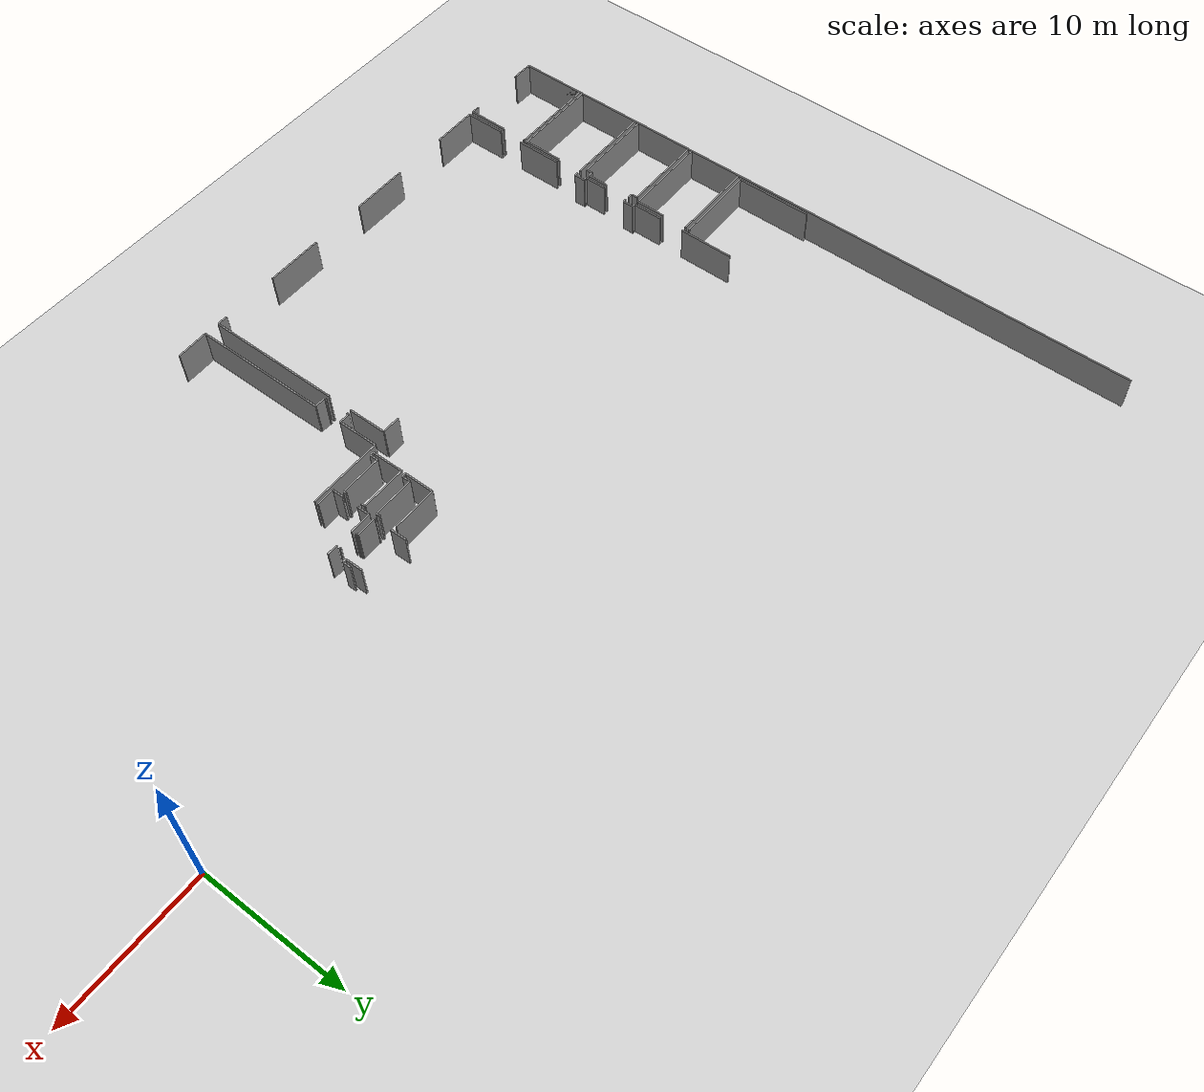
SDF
<sdf version="1.6">
 <world name="default">
  <model name="ground_plane">
   <static>1</static>
   <link name="link">
    <collision name="collision">
     <geometry><plane><normal>0 0 1</normal><size>100 100</size></plane></geometry>
     <surface><friction><ode><mu>100</mu><mu2>50</mu2></ode></friction></surface>
    </collision>
    <visual name="visual">
     <cast_shadows>0</cast_shadows>
     <geometry><plane><normal>0 0 1</normal><size>100 100</size></plane></geometry>
     <material>
      <script><uri>file://media/materials/scripts/gazebo.material</uri><name>Gazebo/Grey</name></script>
     </material>
    </visual>
   </link>
  </model>
  <model name="50057023">
   <static>1</static>
   <link name="Wall_179">
    <collision name="Wall_179_Collision">
     <geometry><box><size>5.35703195994 0.1 2.5</size></box></geometry>
     <pose>2.67851597997 0 1.25 0 0 0</pose>
    </collision>
    <visual name="Wall_179_Visual">
     <pose>2.67851597997 0 1.25 0 0 0</pose>
     <geometry><box><size>5.35703195994 0.1 2.5</size></box></geometry>
     <material>
      <script><uri>file://media/materials/scripts/gazebo.material</uri><name>Gazebo/Grey</name></script>
      <ambient>1 1 1 1</ambient>
     </material>
    </visual>
    <pose>0.242706449401 -28.9653354355 0 0 0 1.57079632679</pose>
   </link>
   <link name="Wall_187">
    <collision name="Wall_187_Collision">
     <geometry><box><size>5.84393770537 0.1 2.5</size></box></geometry>
     <pose>2.92196885269 0 1.25 0 0 0</pose>
    </collision>
    <visual name="Wall_187_Visual">
     <pose>2.92196885269 0 1.25 0 0 0</pose>
     <geometry><box><size>5.84393770537 0.1 2.5</size></box></geometry>
     <material>
      <script><uri>file://media/materials/scripts/gazebo.material</uri><name>Gazebo/Grey</name></script>
      <ambient>1 1 1 1</ambient>
     </material>
    </visual>
    <pose>6.08654544441 -28.9313692066 0 0 0 -3.13578040474</pose>
   </link>
   <link name="Wall_188">
    <collision name="Wall_188_Collision">
     <geometry><box><size>3.93475949248 0.1 2.5</size></box></geometry>
     <pose>1.96737974624 0 1.25 0 0 0</pose>
    </collision>
    <visual name="Wall_188_Visual">
     <pose>1.96737974624 0 1.25 0 0 0</pose>
     <geometry><box><size>3.93475949248 0.1 2.5</size></box></geometry>
     <material>
      <script><uri>file://media/materials/scripts/gazebo.material</uri><name>Gazebo/Grey</name></script>
      <ambient>1 1 1 1</ambient>
     </material>
    </visual>
    <pose>0.00190109490392 -33.1738525942 0 0 0 1.57079632679</pose>
   </link>
   <link name="Wall_189">
    <collision name="Wall_189_Collision">
     <geometry><box><size>6.07247734212 0.1 2.5</size></box></geometry>
     <pose>3.03623867106 0 1.25 0 0 0</pose>
    </collision>
    <visual name="Wall_189_Visual">
     <pose>3.03623867106 0 1.25 0 0 0</pose>
     <geometry><box><size>6.07247734212 0.1 2.5</size></box></geometry>
     <material>
      <script><uri>file://media/materials/scripts/gazebo.material</uri><name>Gazebo/Grey</name></script>
      <ambient>1 1 1 1</ambient>
     </material>
    </visual>
    <pose>0.00190109490392 -29.2390931017 0 0 0 0.0</pose>
   </link>
   <link name="Wall_190">
    <collision name="Wall_190_Collision">
     <geometry><box><size>2.09994943088 0.1 2.5</size></box></geometry>
     <pose>1.04997471544 0 1.25 0 0 0</pose>
    </collision>
    <visual name="Wall_190_Visual">
     <pose>1.04997471544 0 1.25 0 0 0</pose>
     <geometry><box><size>2.09994943088 0.1 2.5</size></box></geometry>
     <material>
      <script><uri>file://media/materials/scripts/gazebo.material</uri><name>Gazebo/Grey</name></script>
      <ambient>1 1 1 1</ambient>
     </material>
    </visual>
    <pose>6.07437843702 -31.0528643797 0 0 0 -1.57079632679</pose>
   </link>
   <link name="Wall_191">
    <collision name="Wall_191_Collision">
     <geometry><box><size>6.07251378763 0.1 2.5</size></box></geometry>
     <pose>3.03625689381 0 1.25 0 0 0</pose>
    </collision>
    <visual name="Wall_191_Visual">
     <pose>3.03625689381 0 1.25 0 0 0</pose>
     <geometry><box><size>6.07251378763 0.1 2.5</size></box></geometry>
     <material>
      <script><uri>file://media/materials/scripts/gazebo.material</uri><name>Gazebo/Grey</name></script>
      <ambient>1 1 1 1</ambient>
     </material>
    </visual>
    <pose>6.07437843702 -33.1528138106 0 0 0 -3.13812805451</pose>
   </link>
   <link name="Wall_192">
    <collision name="Wall_192_Collision">
     <geometry><box><size>4.26516978679 0.1 2.5</size></box></geometry>
     <pose>2.13258489339 0 1.25 0 0 0</pose>
    </collision>
    <visual name="Wall_192_Visual">
     <pose>2.13258489339 0 1.25 0 0 0</pose>
     <geometry><box><size>4.26516978679 0.1 2.5</size></box></geometry>
     <material>
      <script><uri>file://media/materials/scripts/gazebo.material</uri><name>Gazebo/Grey</name></script>
      <ambient>1 1 1 1</ambient>
     </material>
    </visual>
    <pose>0.00126739660262 -37.7263411908 0 0 0 1.57079632679</pose>
   </link>
   <link name="Wall_193">
    <collision name="Wall_193_Collision">
     <geometry><box><size>5.77299152492 0.1 2.5</size></box></geometry>
     <pose>2.88649576246 0 1.25 0 0 0</pose>
    </collision>
    <visual name="Wall_193_Visual">
     <pose>2.88649576246 0 1.25 0 0 0</pose>
     <geometry><box><size>5.77299152492 0.1 2.5</size></box></geometry>
     <material>
      <script><uri>file://media/materials/scripts/gazebo.material</uri><name>Gazebo/Grey</name></script>
      <ambient>1 1 1 1</ambient>
     </material>
    </visual>
    <pose>0.00126739660262 -33.461171404 0 0 0 0.0</pose>
   </link>
   <link name="Wall_194">
    <collision name="Wall_194_Collision">
     <geometry><box><size>0.458417351166 0.1 2.5</size></box></geometry>
     <pose>0.229208675583 0 1.25 0 0 0</pose>
    </collision>
    <visual name="Wall_194_Visual">
     <pose>0.229208675583 0 1.25 0 0 0</pose>
     <geometry><box><size>0.458417351166 0.1 2.5</size></box></geometry>
     <material>
      <script><uri>file://media/materials/scripts/gazebo.material</uri><name>Gazebo/Grey</name></script>
      <ambient>1 1 1 1</ambient>
     </material>
    </visual>
    <pose>5.77425892152 -33.461171404 0 0 0 -1.57079632679</pose>
   </link>
   <link name="Wall_195">
    <collision name="Wall_195_Collision">
     <geometry><box><size>0.333452046148 0.1 2.5</size></box></geometry>
     <pose>0.166726023074 0 1.25 0 0 0</pose>
    </collision>
    <visual name="Wall_195_Visual">
     <pose>0.166726023074 0 1.25 0 0 0</pose>
     <geometry><box><size>0.333452046148 0.1 2.5</size></box></geometry>
     <material>
      <script><uri>file://media/materials/scripts/gazebo.material</uri><name>Gazebo/Grey</name></script>
      <ambient>1 1 1 1</ambient>
     </material>
    </visual>
    <pose>5.77425892152 -33.9195887552 0 0 0 0.0</pose>
   </link>
   <link name="Wall_196">
    <collision name="Wall_196_Collision">
     <geometry><box><size>1.50465324663 0.1 2.5</size></box></geometry>
     <pose>0.752326623313 0 1.25 0 0 0</pose>
    </collision>
    <visual name="Wall_196_Visual">
     <pose>0.752326623313 0 1.25 0 0 0</pose>
     <geometry><box><size>1.50465324663 0.1 2.5</size></box></geometry>
     <material>
      <script><uri>file://media/materials/scripts/gazebo.material</uri><name>Gazebo/Grey</name></script>
      <ambient>1 1 1 1</ambient>
     </material>
    </visual>
    <pose>6.10771096767 -35.7503431476 0 0 0 -1.57079632679</pose>
   </link>
   <link name="Wall_197">
    <collision name="Wall_197_Collision">
     <geometry><box><size>0.325847666533 0.1 2.5</size></box></geometry>
     <pose>0.162923833266 0 1.25 0 0 0</pose>
    </collision>
    <visual name="Wall_197_Visual">
     <pose>0.162923833266 0 1.25 0 0 0</pose>
     <geometry><box><size>0.325847666533 0.1 2.5</size></box></geometry>
     <material>
      <script><uri>file://media/materials/scripts/gazebo.material</uri><name>Gazebo/Grey</name></script>
      <ambient>1 1 1 1</ambient>
     </material>
    </visual>
    <pose>6.10771096767 -37.2549963943 0 0 0 3.14159265359</pose>
   </link>
   <link name="Wall_198">
    <collision name="Wall_198_Collision">
     <geometry><box><size>0.469570441269 0.1 2.5</size></box></geometry>
     <pose>0.234785220635 0 1.25 0 0 0</pose>
    </collision>
    <visual name="Wall_198_Visual">
     <pose>0.234785220635 0 1.25 0 0 0</pose>
     <geometry><box><size>0.469570441269 0.1 2.5</size></box></geometry>
     <material>
      <script><uri>file://media/materials/scripts/gazebo.material</uri><name>Gazebo/Grey</name></script>
      <ambient>1 1 1 1</ambient>
     </material>
    </visual>
    <pose>5.78186330114 -37.2549963943 0 0 0 -1.57079632679</pose>
   </link>
   <link name="Wall_199">
    <collision name="Wall_199_Collision">
     <geometry><box><size>5.78059617685 0.1 2.5</size></box></geometry>
     <pose>2.89029808843 0 1.25 0 0 0</pose>
    </collision>
    <visual name="Wall_199_Visual">
     <pose>2.89029808843 0 1.25 0 0 0</pose>
     <geometry><box><size>5.78059617685 0.1 2.5</size></box></geometry>
     <material>
      <script><uri>file://media/materials/scripts/gazebo.material</uri><name>Gazebo/Grey</name></script>
      <ambient>1 1 1 1</ambient>
     </material>
    </visual>
    <pose>5.78186330114 -37.7245668355 0 0 0 -3.14128570337</pose>
   </link>
   <link name="Wall_200">
    <collision name="Wall_200_Collision">
     <geometry><box><size>4.65755577496 0.1 2.5</size></box></geometry>
     <pose>2.32877788748 0 1.25 0 0 0</pose>
    </collision>
    <visual name="Wall_200_Visual">
     <pose>2.32877788748 0 1.25 0 0 0</pose>
     <geometry><box><size>4.65755577496 0.1 2.5</size></box></geometry>
     <material>
      <script><uri>file://media/materials/scripts/gazebo.material</uri><name>Gazebo/Grey</name></script>
      <ambient>1 1 1 1</ambient>
     </material>
    </visual>
    <pose>0.00304175184628 -42.6792003741 0 0 0 1.57079632679</pose>
   </link>
   <link name="Wall_201">
    <collision name="Wall_201_Collision">
     <geometry><box><size>6.10466921582 0.1 2.5</size></box></geometry>
     <pose>3.05233460791 0 1.25 0 0 0</pose>
    </collision>
    <visual name="Wall_201_Visual">
     <pose>3.05233460791 0 1.25 0 0 0</pose>
     <geometry><box><size>6.10466921582 0.1 2.5</size></box></geometry>
     <material>
      <script><uri>file://media/materials/scripts/gazebo.material</uri><name>Gazebo/Grey</name></script>
      <ambient>1 1 1 1</ambient>
     </material>
    </visual>
    <pose>0.00304175184628 -38.0216445992 0 0 0 0.0</pose>
   </link>
   <link name="Wall_202">
    <collision name="Wall_202_Collision">
     <geometry><box><size>2.82135157708 0.1 2.5</size></box></geometry>
     <pose>1.41067578854 0 1.25 0 0 0</pose>
    </collision>
    <visual name="Wall_202_Visual">
     <pose>1.41067578854 0 1.25 0 0 0</pose>
     <geometry><box><size>2.82135157708 0.1 2.5</size></box></geometry>
     <material>
      <script><uri>file://media/materials/scripts/gazebo.material</uri><name>Gazebo/Grey</name></script>
      <ambient>1 1 1 1</ambient>
     </material>
    </visual>
    <pose>6.10771096767 -39.8420063395 0 0 0 -1.57079632679</pose>
   </link>
   <link name="Wall_203">
    <collision name="Wall_203_Collision">
     <geometry><box><size>6.10468977247 0.1 2.5</size></box></geometry>
     <pose>3.05234488623 0 1.25 0 0 0</pose>
    </collision>
    <visual name="Wall_203_Visual">
     <pose>3.05234488623 0 1.25 0 0 0</pose>
     <geometry><box><size>6.10468977247 0.1 2.5</size></box></geometry>
     <material>
      <script><uri>file://media/materials/scripts/gazebo.material</uri><name>Gazebo/Grey</name></script>
      <ambient>1 1 1 1</ambient>
     </material>
    </visual>
    <pose>6.10771096767 -42.6633579166 0 0 0 -3.13899752167</pose>
   </link>
   <link name="Wall_204">
    <collision name="Wall_204_Collision">
     <geometry><box><size>4.64576898655 0.1 2.5</size></box></geometry>
     <pose>2.32288449328 0 1.25 0 0 0</pose>
    </collision>
    <visual name="Wall_204_Visual">
     <pose>2.32288449328 0 1.25 0 0 0</pose>
     <geometry><box><size>4.64576898655 0.1 2.5</size></box></geometry>
     <material>
      <script><uri>file://media/materials/scripts/gazebo.material</uri><name>Gazebo/Grey</name></script>
      <ambient>1 1 1 1</ambient>
     </material>
    </visual>
    <pose>0.0 -47.5496787783 0 0 0 1.57079632679</pose>
   </link>
   <link name="Wall_205">
    <collision name="Wall_205_Collision">
     <geometry><box><size>6.07894106479 0.1 2.5</size></box></geometry>
     <pose>3.0394705324 0 1.25 0 0 0</pose>
    </collision>
    <visual name="Wall_205_Visual">
     <pose>3.0394705324 0 1.25 0 0 0</pose>
     <geometry><box><size>6.07894106479 0.1 2.5</size></box></geometry>
     <material>
      <script><uri>file://media/materials/scripts/gazebo.material</uri><name>Gazebo/Grey</name></script>
      <ambient>1 1 1 1</ambient>
     </material>
    </visual>
    <pose>0.0 -42.9039097918 0 0 0 0.0</pose>
   </link>
   <link name="Wall_206">
    <collision name="Wall_206_Collision">
     <geometry><box><size>0.0915060347089 0.1 2.5</size></box></geometry>
     <pose>0.0457530173545 0 1.25 0 0 0</pose>
    </collision>
    <visual name="Wall_206_Visual">
     <pose>0.0457530173545 0 1.25 0 0 0</pose>
     <geometry><box><size>0.0915060347089 0.1 2.5</size></box></geometry>
     <material>
      <script><uri>file://media/materials/scripts/gazebo.material</uri><name>Gazebo/Grey</name></script>
      <ambient>1 1 1 1</ambient>
     </material>
    </visual>
    <pose>6.07894106479 -42.9039097918 0 0 0 -1.57079632679</pose>
   </link>
   <link name="Wall_207">
    <collision name="Wall_207_Collision">
     <geometry><box><size>2.79169449658 0.1 2.5</size></box></geometry>
     <pose>1.39584724829 0 1.25 0 0 0</pose>
    </collision>
    <visual name="Wall_207_Visual">
     <pose>1.39584724829 0 1.25 0 0 0</pose>
     <geometry><box><size>2.79169449658 0.1 2.5</size></box></geometry>
     <material>
      <script><uri>file://media/materials/scripts/gazebo.material</uri><name>Gazebo/Grey</name></script>
      <ambient>1 1 1 1</ambient>
     </material>
    </visual>
    <pose>6.07894106479 -44.7695175908 0 0 0 -1.57079632679</pose>
   </link>
   <link name="Wall_208">
    <collision name="Wall_208_Collision">
     <geometry><box><size>0.546247935728 0.1 2.5</size></box></geometry>
     <pose>0.273123967864 0 1.25 0 0 0</pose>
    </collision>
    <visual name="Wall_208_Visual">
     <pose>0.273123967864 0 1.25 0 0 0</pose>
     <geometry><box><size>0.546247935728 0.1 2.5</size></box></geometry>
     <material>
      <script><uri>file://media/materials/scripts/gazebo.material</uri><name>Gazebo/Grey</name></script>
      <ambient>1 1 1 1</ambient>
     </material>
    </visual>
    <pose>6.07894106479 -47.5612120874 0 0 0 3.14159265359</pose>
   </link>
   <link name="Wall_209">
    <collision name="Wall_209_Collision">
     <geometry><box><size>1.49937453912 0.1 2.5</size></box></geometry>
     <pose>0.74968726956 0 1.25 0 0 0</pose>
    </collision>
    <visual name="Wall_209_Visual">
     <pose>0.74968726956 0 1.25 0 0 0</pose>
     <geometry><box><size>1.49937453912 0.1 2.5</size></box></geometry>
     <material>
      <script><uri>file://media/materials/scripts/gazebo.material</uri><name>Gazebo/Grey</name></script>
      <ambient>1 1 1 1</ambient>
     </material>
    </visual>
    <pose>1.4993301809 -47.5612120874 0 0 0 3.13390049761</pose>
   </link>
   <link name="Wall_210">
    <collision name="Wall_210_Collision">
     <geometry><box><size>2.81362045781 0.1 2.5</size></box></geometry>
     <pose>1.4068102289 0 1.25 0 0 0</pose>
    </collision>
    <visual name="Wall_210_Visual">
     <pose>1.4068102289 0 1.25 0 0 0</pose>
     <geometry><box><size>2.81362045781 0.1 2.5</size></box></geometry>
     <material>
      <script><uri>file://media/materials/scripts/gazebo.material</uri><name>Gazebo/Grey</name></script>
      <ambient>1 1 1 1</ambient>
     </material>
    </visual>
    <pose>6.39680413273 -47.5780684622 0 0 0 1.57079632679</pose>
   </link>
   <link name="Wall_211">
    <collision name="Wall_211_Collision">
     <geometry><box><size>3.17381457227 0.1 2.5</size></box></geometry>
     <pose>1.58690728614 0 1.25 0 0 0</pose>
    </collision>
    <visual name="Wall_211_Visual">
     <pose>1.58690728614 0 1.25 0 0 0</pose>
     <geometry><box><size>3.17381457227 0.1 2.5</size></box></geometry>
     <material>
      <script><uri>file://media/materials/scripts/gazebo.material</uri><name>Gazebo/Grey</name></script>
      <ambient>1 1 1 1</ambient>
     </material>
    </visual>
    <pose>6.39680413273 -43.0144267755 0 0 0 1.57079632679</pose>
   </link>
   <link name="Wall_212">
    <collision name="Wall_212_Collision">
     <geometry><box><size>0.228258128131 0.1 2.5</size></box></geometry>
     <pose>0.114129064066 0 1.25 0 0 0</pose>
    </collision>
    <visual name="Wall_212_Visual">
     <pose>0.114129064066 0 1.25 0 0 0</pose>
     <geometry><box><size>0.228258128131 0.1 2.5</size></box></geometry>
     <material>
      <script><uri>file://media/materials/scripts/gazebo.material</uri><name>Gazebo/Grey</name></script>
      <ambient>1 1 1 1</ambient>
     </material>
    </visual>
    <pose>6.39680413273 -38.0362196601 0 0 0 0.0</pose>
   </link>
   <link name="Wall_213">
    <collision name="Wall_213_Collision">
     <geometry><box><size>0.760818180551 0.1 2.5</size></box></geometry>
     <pose>0.380409090275 0 1.25 0 0 0</pose>
    </collision>
    <visual name="Wall_213_Visual">
     <pose>0.380409090275 0 1.25 0 0 0</pose>
     <geometry><box><size>0.760818180551 0.1 2.5</size></box></geometry>
     <material>
      <script><uri>file://media/materials/scripts/gazebo.material</uri><name>Gazebo/Grey</name></script>
      <ambient>1 1 1 1</ambient>
     </material>
    </visual>
    <pose>6.62506226086 -38.0362196601 0 0 0 1.57079632679</pose>
   </link>
   <link name="Wall_214">
    <collision name="Wall_214_Collision">
     <geometry><box><size>0.239157738914 0.1 2.5</size></box></geometry>
     <pose>0.119578869457 0 1.25 0 0 0</pose>
    </collision>
    <visual name="Wall_214_Visual">
     <pose>0.119578869457 0 1.25 0 0 0</pose>
     <geometry><box><size>0.239157738914 0.1 2.5</size></box></geometry>
     <material>
      <script><uri>file://media/materials/scripts/gazebo.material</uri><name>Gazebo/Grey</name></script>
      <ambient>1 1 1 1</ambient>
     </material>
    </visual>
    <pose>6.62506226086 -37.2754014796 0 0 0 3.14159265359</pose>
   </link>
   <link name="Wall_215">
    <collision name="Wall_215_Collision">
     <geometry><box><size>1.52176310076 0.1 2.5</size></box></geometry>
     <pose>0.760881550381 0 1.25 0 0 0</pose>
    </collision>
    <visual name="Wall_215_Visual">
     <pose>0.760881550381 0 1.25 0 0 0</pose>
     <geometry><box><size>1.52176310076 0.1 2.5</size></box></geometry>
     <material>
      <script><uri>file://media/materials/scripts/gazebo.material</uri><name>Gazebo/Grey</name></script>
      <ambient>1 1 1 1</ambient>
     </material>
    </visual>
    <pose>6.38590452194 -37.2754014796 0 0 0 1.57079632679</pose>
   </link>
   <link name="Wall_216">
    <collision name="Wall_216_Collision">
     <geometry><box><size>0.236496206048 0.1 2.5</size></box></geometry>
     <pose>0.118248103024 0 1.25 0 0 0</pose>
    </collision>
    <visual name="Wall_216_Visual">
     <pose>0.118248103024 0 1.25 0 0 0</pose>
     <geometry><box><size>0.236496206048 0.1 2.5</size></box></geometry>
     <material>
      <script><uri>file://media/materials/scripts/gazebo.material</uri><name>Gazebo/Grey</name></script>
      <ambient>1 1 1 1</ambient>
     </material>
    </visual>
    <pose>6.38590452194 -33.9377125266 0 0 0 0.0</pose>
   </link>
   <link name="Wall_217">
    <collision name="Wall_217_Collision">
     <geometry><box><size>0.756128813121 0.1 2.5</size></box></geometry>
     <pose>0.378064406561 0 1.25 0 0 0</pose>
    </collision>
    <visual name="Wall_217_Visual">
     <pose>0.378064406561 0 1.25 0 0 0</pose>
     <geometry><box><size>0.756128813121 0.1 2.5</size></box></geometry>
     <material>
      <script><uri>file://media/materials/scripts/gazebo.material</uri><name>Gazebo/Grey</name></script>
      <ambient>1 1 1 1</ambient>
     </material>
    </visual>
    <pose>6.62240072799 -33.9377125266 0 0 0 1.57079632679</pose>
   </link>
   <link name="Wall_218">
    <collision name="Wall_218_Collision">
     <geometry><box><size>0.224709417644 0.1 2.5</size></box></geometry>
     <pose>0.112354708822 0 1.25 0 0 0</pose>
    </collision>
    <visual name="Wall_218_Visual">
     <pose>0.112354708822 0 1.25 0 0 0</pose>
     <geometry><box><size>0.224709417644 0.1 2.5</size></box></geometry>
     <material>
      <script><uri>file://media/materials/scripts/gazebo.material</uri><name>Gazebo/Grey</name></script>
      <ambient>1 1 1 1</ambient>
     </material>
    </visual>
    <pose>6.62240072799 -33.1815837134 0 0 0 3.14159265359</pose>
   </link>
   <link name="Wall_219">
    <collision name="Wall_219_Collision">
     <geometry><box><size>2.11503145045 0.1 2.5</size></box></geometry>
     <pose>1.05751572522 0 1.25 0 0 0</pose>
    </collision>
    <visual name="Wall_219_Visual">
     <pose>1.05751572522 0 1.25 0 0 0</pose>
     <geometry><box><size>2.11503145045 0.1 2.5</size></box></geometry>
     <material>
      <script><uri>file://media/materials/scripts/gazebo.material</uri><name>Gazebo/Grey</name></script>
      <ambient>1 1 1 1</ambient>
     </material>
    </visual>
    <pose>6.39769131035 -33.1815837134 0 0 0 1.57079632679</pose>
   </link>
   <link name="Wall_220">
    <collision name="Wall_220_Collision">
     <geometry><box><size>3.81359637727 0.1 2.5</size></box></geometry>
     <pose>1.90679818864 0 1.25 0 0 0</pose>
    </collision>
    <visual name="Wall_220_Visual">
     <pose>1.90679818864 0 1.25 0 0 0</pose>
     <geometry><box><size>3.81359637727 0.1 2.5</size></box></geometry>
     <material>
      <script><uri>file://media/materials/scripts/gazebo.material</uri><name>Gazebo/Grey</name></script>
      <ambient>1 1 1 1</ambient>
     </material>
    </visual>
    <pose>6.39769131035 -29.2748336859 0 0 0 1.57079632679</pose>
   </link>
   <link name="Wall_237">
    <collision name="Wall_237_Collision">
     <geometry><box><size>1.26118635926 0.1 2.5</size></box></geometry>
     <pose>0.630593179632 0 1.25 0 0 0</pose>
    </collision>
    <visual name="Wall_237_Visual">
     <pose>0.630593179632 0 1.25 0 0 0</pose>
     <geometry><box><size>1.26118635926 0.1 2.5</size></box></geometry>
     <material>
      <script><uri>file://media/materials/scripts/gazebo.material</uri><name>Gazebo/Grey</name></script>
      <ambient>1 1 1 1</ambient>
     </material>
    </visual>
    <pose>29.1830741719 -33.5686466359 0 0 0 0.0</pose>
   </link>
   <link name="Wall_238">
    <collision name="Wall_238_Collision">
     <geometry><box><size>2.71400308484 0.1 2.5</size></box></geometry>
     <pose>1.35700154242 0 1.25 0 0 0</pose>
    </collision>
    <visual name="Wall_238_Visual">
     <pose>1.35700154242 0 1.25 0 0 0</pose>
     <geometry><box><size>2.71400308484 0.1 2.5</size></box></geometry>
     <material>
      <script><uri>file://media/materials/scripts/gazebo.material</uri><name>Gazebo/Grey</name></script>
      <ambient>1 1 1 1</ambient>
     </material>
    </visual>
    <pose>30.4442605311 -33.5686466359 0 0 0 -1.57079632679</pose>
   </link>
   <link name="Wall_239">
    <collision name="Wall_239_Collision">
     <geometry><box><size>9.52081001852 0.1 2.5</size></box></geometry>
     <pose>4.76040500926 0 1.25 0 0 0</pose>
    </collision>
    <visual name="Wall_239_Visual">
     <pose>4.76040500926 0 1.25 0 0 0</pose>
     <geometry><box><size>9.52081001852 0.1 2.5</size></box></geometry>
     <material>
      <script><uri>file://media/materials/scripts/gazebo.material</uri><name>Gazebo/Grey</name></script>
      <ambient>1 1 1 1</ambient>
     </material>
    </visual>
    <pose>30.4442605311 -38.0362196601 0 0 0 -1.57079632679</pose>
   </link>
   <link name="Wall_240">
    <collision name="Wall_240_Collision">
     <geometry><box><size>0.723303241113 0.1 2.5</size></box></geometry>
     <pose>0.361651620557 0 1.25 0 0 0</pose>
    </collision>
    <visual name="Wall_240_Visual">
     <pose>0.361651620557 0 1.25 0 0 0</pose>
     <geometry><box><size>0.723303241113 0.1 2.5</size></box></geometry>
     <material>
      <script><uri>file://media/materials/scripts/gazebo.material</uri><name>Gazebo/Grey</name></script>
      <ambient>1 1 1 1</ambient>
     </material>
    </visual>
    <pose>30.4442605311 -47.5570296786 0 0 0 3.14159265359</pose>
   </link>
   <link name="Wall_241">
    <collision name="Wall_241_Collision">
     <geometry><box><size>4.02905379972 0.1 2.5</size></box></geometry>
     <pose>2.01452689986 0 1.25 0 0 0</pose>
    </collision>
    <visual name="Wall_241_Visual">
     <pose>2.01452689986 0 1.25 0 0 0</pose>
     <geometry><box><size>4.02905379972 0.1 2.5</size></box></geometry>
     <material>
      <script><uri>file://media/materials/scripts/gazebo.material</uri><name>Gazebo/Grey</name></script>
      <ambient>1 1 1 1</ambient>
     </material>
    </visual>
    <pose>25.6830317141 -47.5570296786 0 0 0 3.14159265359</pose>
   </link>
   <link name="Wall_242">
    <collision name="Wall_242_Collision">
     <geometry><box><size>4.04350212099 0.1 2.5</size></box></geometry>
     <pose>2.02175106049 0 1.25 0 0 0</pose>
    </collision>
    <visual name="Wall_242_Visual">
     <pose>2.02175106049 0 1.25 0 0 0</pose>
     <geometry><box><size>4.04350212099 0.1 2.5</size></box></geometry>
     <material>
      <script><uri>file://media/materials/scripts/gazebo.material</uri><name>Gazebo/Grey</name></script>
      <ambient>1 1 1 1</ambient>
     </material>
    </visual>
    <pose>17.6250508543 -47.5570296786 0 0 0 3.14159265359</pose>
   </link>
   <link name="Wall_243">
    <collision name="Wall_243_Collision">
     <geometry><box><size>3.17033567068 0.1 2.5</size></box></geometry>
     <pose>1.58516783534 0 1.25 0 0 0</pose>
    </collision>
    <visual name="Wall_243_Visual">
     <pose>1.58516783534 0 1.25 0 0 0</pose>
     <geometry><box><size>3.17033567068 0.1 2.5</size></box></geometry>
     <material>
      <script><uri>file://media/materials/scripts/gazebo.material</uri><name>Gazebo/Grey</name></script>
      <ambient>1 1 1 1</ambient>
     </material>
    </visual>
    <pose>9.56706999451 -47.5570296786 0 0 0 -3.13495646733</pose>
   </link>
   <link name="Wall_244">
    <collision name="Wall_244_Collision">
     <geometry><box><size>9.4663119646 0.1 2.5</size></box></geometry>
     <pose>4.7331559823 0 1.25 0 0 0</pose>
    </collision>
    <visual name="Wall_244_Visual">
     <pose>4.7331559823 0 1.25 0 0 0</pose>
     <geometry><box><size>9.4663119646 0.1 2.5</size></box></geometry>
     <material>
      <script><uri>file://media/materials/scripts/gazebo.material</uri><name>Gazebo/Grey</name></script>
      <ambient>1 1 1 1</ambient>
     </material>
    </visual>
    <pose>31.5003821201 -47.6041768322 0 0 0 1.57079632679</pose>
   </link>
   <link name="Wall_245">
    <collision name="Wall_245_Collision">
     <geometry><box><size>0.763606453077 0.1 2.5</size></box></geometry>
     <pose>0.381803226538 0 1.25 0 0 0</pose>
    </collision>
    <visual name="Wall_245_Visual">
     <pose>0.381803226538 0 1.25 0 0 0</pose>
     <geometry><box><size>0.763606453077 0.1 2.5</size></box></geometry>
     <material>
      <script><uri>file://media/materials/scripts/gazebo.material</uri><name>Gazebo/Grey</name></script>
      <ambient>1 1 1 1</ambient>
     </material>
    </visual>
    <pose>31.5003821201 -38.1378648676 0 0 0 3.14159265359</pose>
   </link>
   <link name="Wall_246">
    <collision name="Wall_246_Collision">
     <geometry><box><size>0.10658805428 0.1 2.5</size></box></geometry>
     <pose>0.05329402714 0 1.25 0 0 0</pose>
    </collision>
    <visual name="Wall_246_Visual">
     <pose>0.05329402714 0 1.25 0 0 0</pose>
     <geometry><box><size>0.10658805428 0.1 2.5</size></box></geometry>
     <material>
      <script><uri>file://media/materials/scripts/gazebo.material</uri><name>Gazebo/Grey</name></script>
      <ambient>1 1 1 1</ambient>
     </material>
    </visual>
    <pose>30.736775667 -38.1378648676 0 0 0 1.57079632679</pose>
   </link>
   <link name="Wall_247">
    <collision name="Wall_247_Collision">
     <geometry><box><size>0.152087592314 0.1 2.5</size></box></geometry>
     <pose>0.076043796157 0 1.25 0 0 0</pose>
    </collision>
    <visual name="Wall_247_Visual">
     <pose>0.076043796157 0 1.25 0 0 0</pose>
     <geometry><box><size>0.152087592314 0.1 2.5</size></box></geometry>
     <material>
      <script><uri>file://media/materials/scripts/gazebo.material</uri><name>Gazebo/Grey</name></script>
      <ambient>1 1 1 1</ambient>
     </material>
    </visual>
    <pose>30.736775667 -36.2855647329 0 0 0 1.57079632679</pose>
   </link>
   <link name="Wall_248">
    <collision name="Wall_248_Collision">
     <geometry><box><size>0.741807231512 0.1 2.5</size></box></geometry>
     <pose>0.370903615756 0 1.25 0 0 0</pose>
    </collision>
    <visual name="Wall_248_Visual">
     <pose>0.370903615756 0 1.25 0 0 0</pose>
     <geometry><box><size>0.741807231512 0.1 2.5</size></box></geometry>
     <material>
      <script><uri>file://media/materials/scripts/gazebo.material</uri><name>Gazebo/Grey</name></script>
      <ambient>1 1 1 1</ambient>
     </material>
    </visual>
    <pose>30.736775667 -36.1334771406 0 0 0 0.0</pose>
   </link>
   <link name="Wall_249">
    <collision name="Wall_249_Collision">
     <geometry><box><size>2.82629442384 0.1 2.5</size></box></geometry>
     <pose>1.41314721192 0 1.25 0 0 0</pose>
    </collision>
    <visual name="Wall_249_Visual">
     <pose>1.41314721192 0 1.25 0 0 0</pose>
     <geometry><box><size>2.82629442384 0.1 2.5</size></box></geometry>
     <material>
      <script><uri>file://media/materials/scripts/gazebo.material</uri><name>Gazebo/Grey</name></script>
      <ambient>1 1 1 1</ambient>
     </material>
    </visual>
    <pose>31.4785828985 -36.1334771406 0 0 0 1.57079632679</pose>
   </link>
   <link name="Wall_250">
    <collision name="Wall_250_Collision">
     <geometry><box><size>5.13282950094 0.1 2.5</size></box></geometry>
     <pose>2.56641475047 0 1.25 0 0 0</pose>
    </collision>
    <visual name="Wall_250_Visual">
     <pose>2.56641475047 0 1.25 0 0 0</pose>
     <geometry><box><size>5.13282950094 0.1 2.5</size></box></geometry>
     <material>
      <script><uri>file://media/materials/scripts/gazebo.material</uri><name>Gazebo/Grey</name></script>
      <ambient>1 1 1 1</ambient>
     </material>
    </visual>
    <pose>31.4785828985 -33.3071827168 0 0 0 0.0</pose>
   </link>
   <link name="Wall_275">
    <collision name="Wall_275_Collision">
     <geometry><box><size>2.24909084723 0.1 2.5</size></box></geometry>
     <pose>1.12454542361 0 1.25 0 0 0</pose>
    </collision>
    <visual name="Wall_275_Visual">
     <pose>1.12454542361 0 1.25 0 0 0</pose>
     <geometry><box><size>2.24909084723 0.1 2.5</size></box></geometry>
     <material>
      <script><uri>file://media/materials/scripts/gazebo.material</uri><name>Gazebo/Grey</name></script>
      <ambient>1 1 1 1</ambient>
     </material>
    </visual>
    <pose>33.7489971724 -47.5579168562 0 0 0 -3.12102290274</pose>
   </link>
   <link name="Wall_276">
    <collision name="Wall_276_Collision">
     <geometry><box><size>0.789207864449 0.1 2.5</size></box></geometry>
     <pose>0.394603932225 0 1.25 0 0 0</pose>
    </collision>
    <visual name="Wall_276_Visual">
     <pose>0.394603932225 0 1.25 0 0 0</pose>
     <geometry><box><size>0.789207864449 0.1 2.5</size></box></geometry>
     <material>
      <script><uri>file://media/materials/scripts/gazebo.material</uri><name>Gazebo/Grey</name></script>
      <ambient>1 1 1 1</ambient>
     </material>
    </visual>
    <pose>35.3659417581 -33.0611810362 0 0 0 1.57079632679</pose>
   </link>
   <link name="Wall_277">
    <collision name="Wall_277_Collision">
     <geometry><box><size>0.897823753294 0.1 2.5</size></box></geometry>
     <pose>0.448911876647 0 1.25 0 0 0</pose>
    </collision>
    <visual name="Wall_277_Visual">
     <pose>0.448911876647 0 1.25 0 0 0</pose>
     <geometry><box><size>0.897823753294 0.1 2.5</size></box></geometry>
     <material>
      <script><uri>file://media/materials/scripts/gazebo.material</uri><name>Gazebo/Grey</name></script>
      <ambient>1 1 1 1</ambient>
     </material>
    </visual>
    <pose>35.3659417581 -31.0861969103 0 0 0 1.57079632679</pose>
   </link>
   <link name="Wall_278">
    <collision name="Wall_278_Collision">
     <geometry><box><size>1.48374120268 0.1 2.5</size></box></geometry>
     <pose>0.741870601342 0 1.25 0 0 0</pose>
    </collision>
    <visual name="Wall_278_Visual">
     <pose>0.741870601342 0 1.25 0 0 0</pose>
     <geometry><box><size>1.48374120268 0.1 2.5</size></box></geometry>
     <material>
      <script><uri>file://media/materials/scripts/gazebo.material</uri><name>Gazebo/Grey</name></script>
      <ambient>1 1 1 1</ambient>
     </material>
    </visual>
    <pose>35.3659417581 -30.188373157 0 0 0 0.0</pose>
   </link>
   <link name="Wall_279">
    <collision name="Wall_279_Collision">
     <geometry><box><size>0.733442413934 0.1 2.5</size></box></geometry>
     <pose>0.366721206967 0 1.25 0 0 0</pose>
    </collision>
    <visual name="Wall_279_Visual">
     <pose>0.366721206967 0 1.25 0 0 0</pose>
     <geometry><box><size>0.733442413934 0.1 2.5</size></box></geometry>
     <material>
      <script><uri>file://media/materials/scripts/gazebo.material</uri><name>Gazebo/Grey</name></script>
      <ambient>1 1 1 1</ambient>
     </material>
    </visual>
    <pose>38.0453449156 -30.188373157 0 0 0 0.0</pose>
   </link>
   <link name="Wall_284">
    <collision name="Wall_284_Collision">
     <geometry><box><size>1.25535117189 0.1 2.5</size></box></geometry>
     <pose>0.627675585944 0 1.25 0 0 0</pose>
    </collision>
    <visual name="Wall_284_Visual">
     <pose>0.627675585944 0 1.25 0 0 0</pose>
     <geometry><box><size>1.25535117189 0.1 2.5</size></box></geometry>
     <material>
      <script><uri>file://media/materials/scripts/gazebo.material</uri><name>Gazebo/Grey</name></script>
      <ambient>1 1 1 1</ambient>
     </material>
    </visual>
    <pose>36.6210446136 -33.0362133231 0 0 0 -3.12170231532</pose>
   </link>
   <link name="Wall_285">
    <collision name="Wall_285_Collision">
     <geometry><box><size>1.22113662662 0.1 2.5</size></box></geometry>
     <pose>0.610568313311 0 1.25 0 0 0</pose>
    </collision>
    <visual name="Wall_285_Visual">
     <pose>0.610568313311 0 1.25 0 0 0</pose>
     <geometry><box><size>1.22113662662 0.1 2.5</size></box></geometry>
     <material>
      <script><uri>file://media/materials/scripts/gazebo.material</uri><name>Gazebo/Grey</name></script>
      <ambient>1 1 1 1</ambient>
     </material>
    </visual>
    <pose>38.3997090057 -29.1627958262 0 0 0 1.57079632679</pose>
   </link>
   <link name="Wall_294">
    <collision name="Wall_294_Collision">
     <geometry><box><size>0.572483045402 0.1 2.5</size></box></geometry>
     <pose>0.286241522701 0 1.25 0 0 0</pose>
    </collision>
    <visual name="Wall_294_Visual">
     <pose>0.286241522701 0 1.25 0 0 0</pose>
     <geometry><box><size>0.572483045402 0.1 2.5</size></box></geometry>
     <material>
      <script><uri>file://media/materials/scripts/gazebo.material</uri><name>Gazebo/Grey</name></script>
      <ambient>1 1 1 1</ambient>
     </material>
    </visual>
    <pose>38.639500443 -28.5652183281 0 0 0 -1.57079632679</pose>
   </link>
   <link name="Wall_295">
    <collision name="Wall_295_Collision">
     <geometry><box><size>0.241100943423 0.1 2.5</size></box></geometry>
     <pose>0.120550471712 0 1.25 0 0 0</pose>
    </collision>
    <visual name="Wall_295_Visual">
     <pose>0.120550471712 0 1.25 0 0 0</pose>
     <geometry><box><size>0.241100943423 0.1 2.5</size></box></geometry>
     <material>
      <script><uri>file://media/materials/scripts/gazebo.material</uri><name>Gazebo/Grey</name></script>
      <ambient>1 1 1 1</ambient>
     </material>
    </visual>
    <pose>38.639500443 -29.1377013735 0 0 0 -3.03732104166</pose>
   </link>
   <link name="Wall_319">
    <collision name="Wall_319_Collision">
     <geometry><box><size>2.110722302 0.1 2.5</size></box></geometry>
     <pose>1.055361151 0 1.25 0 0 0</pose>
    </collision>
    <visual name="Wall_319_Visual">
     <pose>1.055361151 0 1.25 0 0 0</pose>
     <geometry><box><size>2.110722302 0.1 2.5</size></box></geometry>
     <material>
      <script><uri>file://media/materials/scripts/gazebo.material</uri><name>Gazebo/Grey</name></script>
      <ambient>1 1 1 1</ambient>
     </material>
    </visual>
    <pose>31.943210493 -30.493562259 0 0 0 1.57079632679</pose>
   </link>
   <link name="Wall_320">
    <collision name="Wall_320_Collision">
     <geometry><box><size>3.12083739428 0.1 2.5</size></box></geometry>
     <pose>1.56041869714 0 1.25 0 0 0</pose>
    </collision>
    <visual name="Wall_320_Visual">
     <pose>1.56041869714 0 1.25 0 0 0</pose>
     <geometry><box><size>3.12083739428 0.1 2.5</size></box></geometry>
     <material>
      <script><uri>file://media/materials/scripts/gazebo.material</uri><name>Gazebo/Grey</name></script>
      <ambient>1 1 1 1</ambient>
     </material>
    </visual>
    <pose>31.943210493 -28.382839957 0 0 0 0.0</pose>
   </link>
   <link name="Wall_322">
    <collision name="Wall_322_Collision">
     <geometry><box><size>0.248663213433 0.1 2.5</size></box></geometry>
     <pose>0.124331606717 0 1.25 0 0 0</pose>
    </collision>
    <visual name="Wall_322_Visual">
     <pose>0.124331606717 0 1.25 0 0 0</pose>
     <geometry><box><size>0.248663213433 0.1 2.5</size></box></geometry>
     <material>
      <script><uri>file://media/materials/scripts/gazebo.material</uri><name>Gazebo/Grey</name></script>
      <ambient>1 1 1 1</ambient>
     </material>
    </visual>
    <pose>35.0640478873 -29.649349382 0 0 0 -1.57079632679</pose>
   </link>
   <link name="Wall_323">
    <collision name="Wall_323_Collision">
     <geometry><box><size>2.85873977686 0.1 2.5</size></box></geometry>
     <pose>1.42936988843 0 1.25 0 0 0</pose>
    </collision>
    <visual name="Wall_323_Visual">
     <pose>1.42936988843 0 1.25 0 0 0</pose>
     <geometry><box><size>2.85873977686 0.1 2.5</size></box></geometry>
     <material>
      <script><uri>file://media/materials/scripts/gazebo.material</uri><name>Gazebo/Grey</name></script>
      <ambient>1 1 1 1</ambient>
     </material>
    </visual>
    <pose>35.0640478873 -29.8980125954 0 0 0 3.14159265359</pose>
   </link>
   <link name="Wall_324">
    <collision name="Wall_324_Collision">
     <geometry><box><size>0.57172260744 0.1 2.5</size></box></geometry>
     <pose>0.28586130372 0 1.25 0 0 0</pose>
    </collision>
    <visual name="Wall_324_Visual">
     <pose>0.28586130372 0 1.25 0 0 0</pose>
     <geometry><box><size>0.57172260744 0.1 2.5</size></box></geometry>
     <material>
      <script><uri>file://media/materials/scripts/gazebo.material</uri><name>Gazebo/Grey</name></script>
      <ambient>1 1 1 1</ambient>
     </material>
    </visual>
    <pose>32.2053081105 -29.8980125954 0 0 0 -1.57079632679</pose>
   </link>
   <link name="Wall_325">
    <collision name="Wall_325_Collision">
     <geometry><box><size>0.263178436924 0.1 2.5</size></box></geometry>
     <pose>0.131589218462 0 1.25 0 0 0</pose>
    </collision>
    <visual name="Wall_325_Visual">
     <pose>0.131589218462 0 1.25 0 0 0</pose>
     <geometry><box><size>0.263178436924 0.1 2.5</size></box></geometry>
     <material>
      <script><uri>file://media/materials/scripts/gazebo.material</uri><name>Gazebo/Grey</name></script>
      <ambient>1 1 1 1</ambient>
     </material>
    </visual>
    <pose>32.2053081105 -30.4697352028 0 0 0 -3.05093276639</pose>
   </link>
   <link name="Wall_326">
    <collision name="Wall_326_Collision">
     <geometry><box><size>2.2552055147 0.1 2.5</size></box></geometry>
     <pose>1.12760275735 0 1.25 0 0 0</pose>
    </collision>
    <visual name="Wall_326_Visual">
     <pose>1.12760275735 0 1.25 0 0 0</pose>
     <geometry><box><size>2.2552055147 0.1 2.5</size></box></geometry>
     <material>
      <script><uri>file://media/materials/scripts/gazebo.material</uri><name>Gazebo/Grey</name></script>
      <ambient>1 1 1 1</ambient>
     </material>
    </visual>
    <pose>31.9438441913 -33.0393818146 0 0 0 1.57079632679</pose>
   </link>
   <link name="Wall_327">
    <collision name="Wall_327_Collision">
     <geometry><box><size>3.12489306341 0.1 2.5</size></box></geometry>
     <pose>1.56244653171 0 1.25 0 0 0</pose>
    </collision>
    <visual name="Wall_327_Visual">
     <pose>1.56244653171 0 1.25 0 0 0</pose>
     <geometry><box><size>3.12489306341 0.1 2.5</size></box></geometry>
     <material>
      <script><uri>file://media/materials/scripts/gazebo.material</uri><name>Gazebo/Grey</name></script>
      <ambient>1 1 1 1</ambient>
     </material>
    </visual>
    <pose>31.9438441913 -30.7841762999 0 0 0 0.0</pose>
   </link>
   <link name="Wall_328">
    <collision name="Wall_328_Collision">
     <geometry><box><size>0.314567836769 0.1 2.5</size></box></geometry>
     <pose>0.157283918385 0 1.25 0 0 0</pose>
    </collision>
    <visual name="Wall_328_Visual">
     <pose>0.157283918385 0 1.25 0 0 0</pose>
     <geometry><box><size>0.314567836769 0.1 2.5</size></box></geometry>
     <material>
      <script><uri>file://media/materials/scripts/gazebo.material</uri><name>Gazebo/Grey</name></script>
      <ambient>1 1 1 1</ambient>
     </material>
    </visual>
    <pose>35.0687372547 -30.7841762999 0 0 0 -1.57079632679</pose>
   </link>
   <link name="Wall_329">
    <collision name="Wall_329_Collision">
     <geometry><box><size>0.195305816463 0.1 2.5</size></box></geometry>
     <pose>0.0976529082316 0 1.25 0 0 0</pose>
    </collision>
    <visual name="Wall_329_Visual">
     <pose>0.0976529082316 0 1.25 0 0 0</pose>
     <geometry><box><size>0.195305816463 0.1 2.5</size></box></geometry>
     <material>
      <script><uri>file://media/materials/scripts/gazebo.material</uri><name>Gazebo/Grey</name></script>
      <ambient>1 1 1 1</ambient>
     </material>
    </visual>
    <pose>35.0687372547 -32.2643687921 0 0 0 -1.57079632679</pose>
   </link>
   <link name="Wall_330">
    <collision name="Wall_330_Collision">
     <geometry><box><size>2.86013391313 0.1 2.5</size></box></geometry>
     <pose>1.43006695656 0 1.25 0 0 0</pose>
    </collision>
    <visual name="Wall_330_Visual">
     <pose>1.43006695656 0 1.25 0 0 0</pose>
     <geometry><box><size>2.86013391313 0.1 2.5</size></box></geometry>
     <material>
      <script><uri>file://media/materials/scripts/gazebo.material</uri><name>Gazebo/Grey</name></script>
      <ambient>1 1 1 1</ambient>
     </material>
    </visual>
    <pose>35.0687372547 -32.4596746086 0 0 0 3.14159265359</pose>
   </link>
   <link name="Wall_331">
    <collision name="Wall_331_Collision">
     <geometry><box><size>0.573370223024 0.1 2.5</size></box></geometry>
     <pose>0.286685111512 0 1.25 0 0 0</pose>
    </collision>
    <visual name="Wall_331_Visual">
     <pose>0.286685111512 0 1.25 0 0 0</pose>
     <geometry><box><size>0.573370223024 0.1 2.5</size></box></geometry>
     <material>
      <script><uri>file://media/materials/scripts/gazebo.material</uri><name>Gazebo/Grey</name></script>
      <ambient>1 1 1 1</ambient>
     </material>
    </visual>
    <pose>32.2086033416 -32.4596746086 0 0 0 -1.57079632679</pose>
   </link>
   <link name="Wall_332">
    <collision name="Wall_332_Collision">
     <geometry><box><size>0.264834976946 0.1 2.5</size></box></geometry>
     <pose>0.132417488473 0 1.25 0 0 0</pose>
    </collision>
    <visual name="Wall_332_Visual">
     <pose>0.132417488473 0 1.25 0 0 0</pose>
     <geometry><box><size>0.264834976946 0.1 2.5</size></box></geometry>
     <material>
      <script><uri>file://media/materials/scripts/gazebo.material</uri><name>Gazebo/Grey</name></script>
      <ambient>1 1 1 1</ambient>
     </material>
    </visual>
    <pose>32.2086033416 -33.0330448316 0 0 0 -3.11766232554</pose>
   </link>
   <link name="Wall_447">
    <collision name="Wall_447_Collision">
     <geometry><box><size>0.0945477865552 0.1 2.5</size></box></geometry>
     <pose>0.0472738932776 0 1.25 0 0 0</pose>
    </collision>
    <visual name="Wall_447_Visual">
     <pose>0.0472738932776 0 1.25 0 0 0</pose>
     <geometry><box><size>0.0945477865552 0.1 2.5</size></box></geometry>
     <material>
      <script><uri>file://media/materials/scripts/gazebo.material</uri><name>Gazebo/Grey</name></script>
      <ambient>1 1 1 1</ambient>
     </material>
    </visual>
    <pose>35.3781087654 -29.7438971685 0 0 0 1.57079632679</pose>
   </link>
   <link name="Wall_448">
    <collision name="Wall_448_Collision">
     <geometry><box><size>1.15066937552 0.1 2.5</size></box></geometry>
     <pose>0.575334687758 0 1.25 0 0 0</pose>
    </collision>
    <visual name="Wall_448_Visual">
     <pose>0.575334687758 0 1.25 0 0 0</pose>
     <geometry><box><size>1.15066937552 0.1 2.5</size></box></geometry>
     <material>
      <script><uri>file://media/materials/scripts/gazebo.material</uri><name>Gazebo/Grey</name></script>
      <ambient>1 1 1 1</ambient>
     </material>
    </visual>
    <pose>35.3781087654 -28.4967789115 0 0 0 1.57079632679</pose>
   </link>
   <link name="Wall_455">
    <collision name="Wall_455_Collision">
     <geometry><box><size>0.110643723408 0.1 2.5</size></box></geometry>
     <pose>0.0553218617042 0 1.25 0 0 0</pose>
    </collision>
    <visual name="Wall_455_Visual">
     <pose>0.0553218617042 0 1.25 0 0 0</pose>
     <geometry><box><size>0.110643723408 0.1 2.5</size></box></geometry>
     <material>
      <script><uri>file://media/materials/scripts/gazebo.material</uri><name>Gazebo/Grey</name></script>
      <ambient>1 1 1 1</ambient>
     </material>
    </visual>
    <pose>38.1197410962 -29.9057437147 0 0 0 3.14159265359</pose>
   </link>
   <link name="Wall_456">
    <collision name="Wall_456_Collision">
     <geometry><box><size>0.0869434069395 0.1 2.5</size></box></geometry>
     <pose>0.0434717034697 0 1.25 0 0 0</pose>
    </collision>
    <visual name="Wall_456_Visual">
     <pose>0.0434717034697 0 1.25 0 0 0</pose>
     <geometry><box><size>0.0869434069395 0.1 2.5</size></box></geometry>
     <material>
      <script><uri>file://media/materials/scripts/gazebo.material</uri><name>Gazebo/Grey</name></script>
      <ambient>1 1 1 1</ambient>
     </material>
    </visual>
    <pose>36.8569071214 -29.9057437147 0 0 0 3.14159265359</pose>
   </link>
   <link name="Wall_457">
    <collision name="Wall_457_Collision">
     <geometry><box><size>0.166662653244 0.1 2.5</size></box></geometry>
     <pose>0.083331326622 0 1.25 0 0 0</pose>
    </collision>
    <visual name="Wall_457_Visual">
     <pose>0.083331326622 0 1.25 0 0 0</pose>
     <geometry><box><size>0.166662653244 0.1 2.5</size></box></geometry>
     <material>
      <script><uri>file://media/materials/scripts/gazebo.material</uri><name>Gazebo/Grey</name></script>
      <ambient>1 1 1 1</ambient>
     </material>
    </visual>
    <pose>36.7699637144 -29.9057437147 0 0 0 1.57079632679</pose>
   </link>
   <link name="Wall_458">
    <collision name="Wall_458_Collision">
     <geometry><box><size>1.39186328133 0.1 2.5</size></box></geometry>
     <pose>0.695931640667 0 1.25 0 0 0</pose>
    </collision>
    <visual name="Wall_458_Visual">
     <pose>0.695931640667 0 1.25 0 0 0</pose>
     <geometry><box><size>1.39186328133 0.1 2.5</size></box></geometry>
     <material>
      <script><uri>file://media/materials/scripts/gazebo.material</uri><name>Gazebo/Grey</name></script>
      <ambient>1 1 1 1</ambient>
     </material>
    </visual>
    <pose>36.7699637144 -29.7390810614 0 0 0 -3.13813245979</pose>
   </link>
   <link name="Wall_466">
    <collision name="Wall_466_Collision">
     <geometry><box><size>47.6041768322 0.1 2.5</size></box></geometry>
     <pose>23.8020884161 0 1.25 0 0 0</pose>
    </collision>
    <visual name="Wall_466_Visual">
     <pose>23.8020884161 0 1.25 0 0 0</pose>
     <geometry><box><size>47.6041768322 0.1 2.5</size></box></geometry>
     <material>
      <script><uri>file://media/materials/scripts/gazebo.material</uri><name>Gazebo/Grey</name></script>
      <ambient>1 1 1 1</ambient>
     </material>
    </visual>
    <pose>0.0 -47.6041768322 0 0 0 1.57079632679</pose>
   </link>
   <pose>-55.9 23.1541768322 0 0 0 0</pose>
  </model>
 </world>
</sdf>
